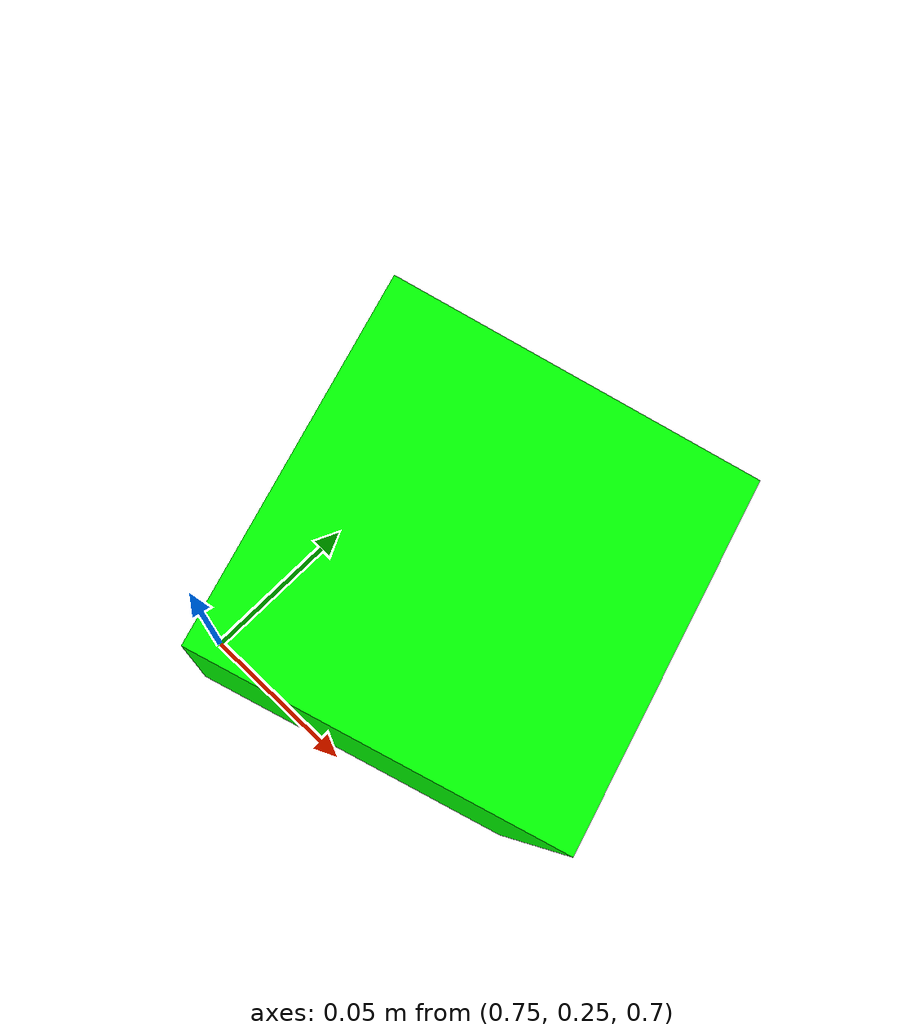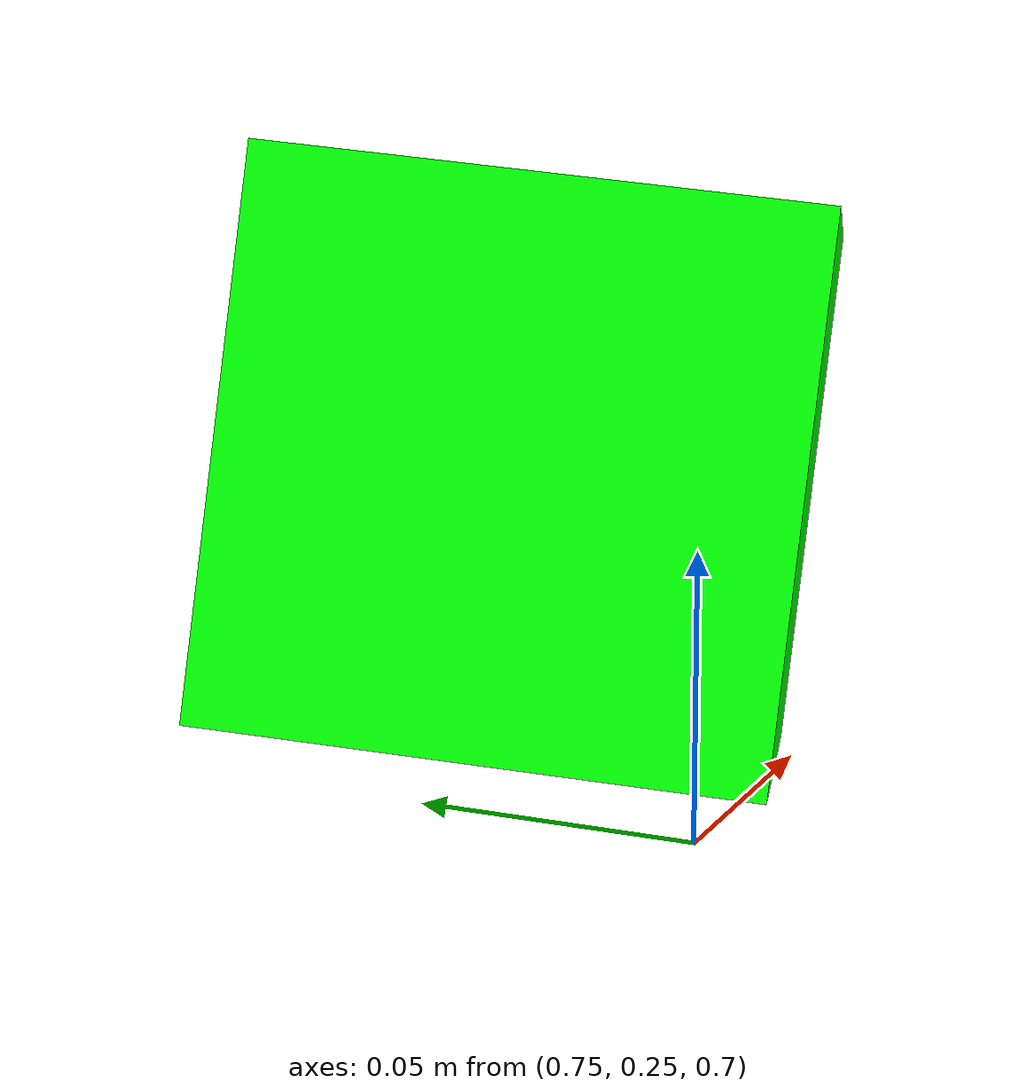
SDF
<?xml version="1.0"?>
<sdf version="1.6">
	<model name="testObject">
		<pose>0.8 0.3 0.75 0.1 0.2 0.3</pose>
		<link name="testObject_link">
			<inertial>
				<mass>20000</mass>
				<inertia>
					<ixx>33.3333333333</ixx>
					<ixy>0.0</ixy>
					<ixz>0.0</ixz>
					<iyy>33.3333333333</iyy>
					<iyz>0.0</iyz>
					<izz>33.3333333333</izz>
				</inertia>
			</inertial>
			<collision name="testObject_collision">
				<geometry>
					<box>
						<size>0.1 0.1 0.1</size>
					</box>
				</geometry>
				<surface>
					<bounce>
						<restitution_coefficient>0.5</restitution_coefficient>
						<threshold>0</threshold>
					</bounce>
					<contact>
						<ode>
							<max_vel>10000</max_vel>
						</ode>
					</contact>
					<friction>
						<ode>
							<mu>1000</mu>
							<mu2>2000</mu2>
						</ode>
					</friction>
				</surface>
			</collision>
			<visual name="testObject_visual">
				<geometry>
					<box>
						<size>0.1 0.1 0.1</size>
					</box>
				</geometry>
				<material>
					<ambient> 0 1 0 1</ambient>
					<diffuse> 0 1 0 1</diffuse>
				</material>
			</visual>
		</link>
	</model>
</sdf>
